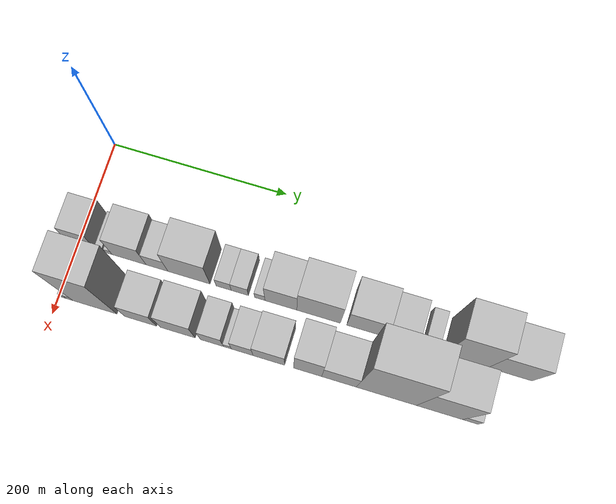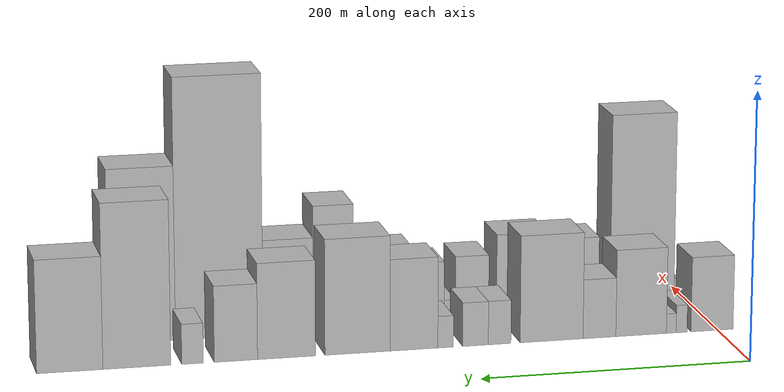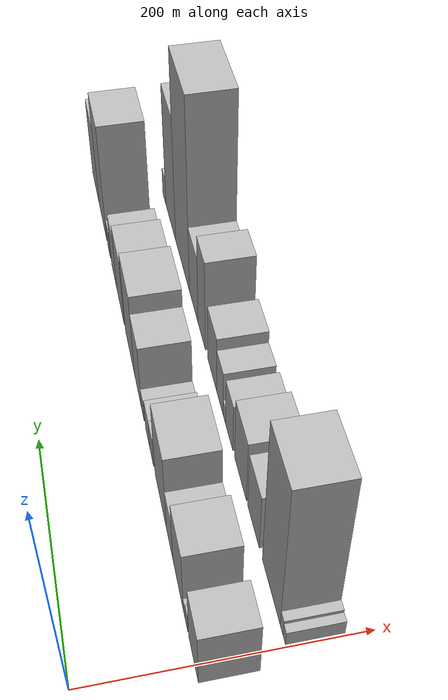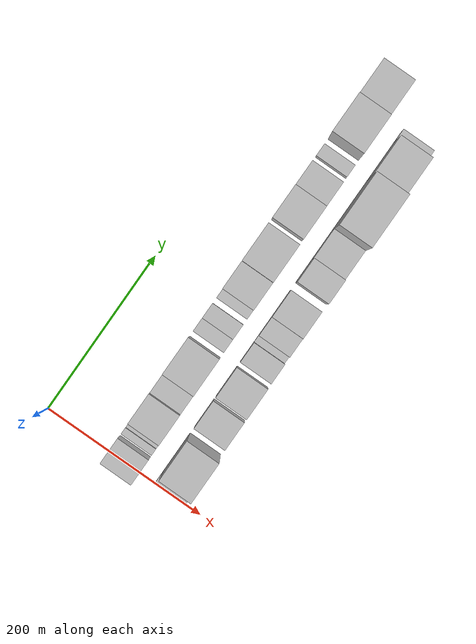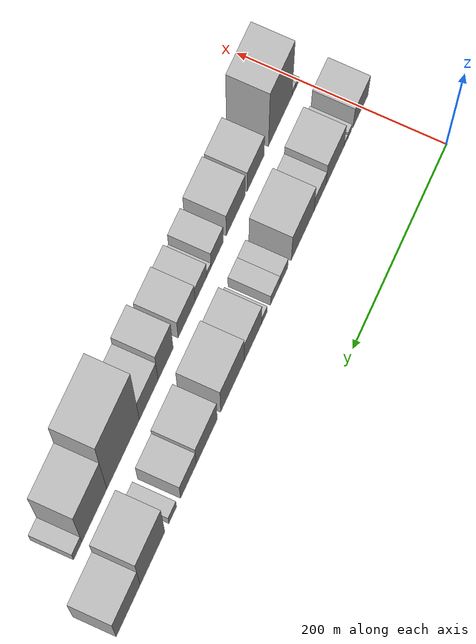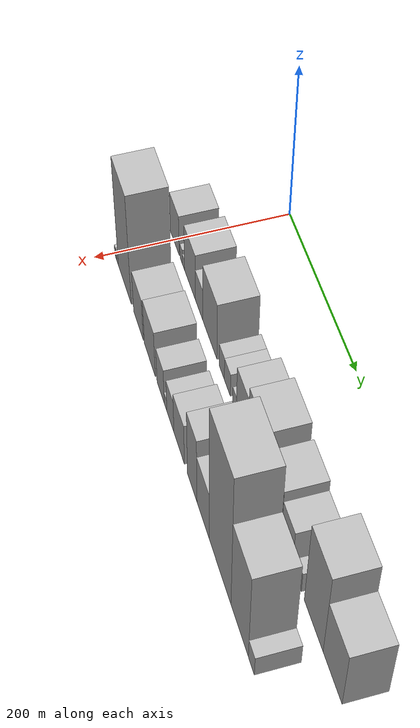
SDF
<sdf version="1.6">
 <world name="default">
  <model name="building_16">
   <static>1</static>
   <pose>100.0000 4.2583 0 0.000000 0.000000 0.000000</pose>
   <link name="link">
    <pose>0 0 28.50 0 0 0</pose>
    <collision name="collision"><geometry><box><size>40.0000 32.5166 57.0000</size></box></geometry></collision>
    <visual name="visual">
     <cast_shadows>0</cast_shadows>
     <geometry><box><size>40.0000 32.5166 57.0000</size></box></geometry>
     <material>
      <script>
       <uri>model://HANNAS_wall/materials/scripts</uri>
       <uri>model://HANNAS_wall/materials/textures</uri>
       <name>vrc/HANNAS_wall</name>
      </script>
     </material>
    </visual>
   </link>
  </model>
  <model name="building_17">
   <static>1</static>
   <pose>100.0000 27.7395 0 0.000000 0.000000 0.000000</pose>
   <link name="link">
    <pose>0 0 10.50 0 0 0</pose>
    <collision name="collision"><geometry><box><size>40.0000 8.4458 21.0000</size></box></geometry></collision>
    <visual name="visual">
     <cast_shadows>0</cast_shadows>
     <geometry><box><size>40.0000 8.4458 21.0000</size></box></geometry>
     <material>
      <script>
       <uri>model://HANNAS_wall/materials/scripts</uri>
       <uri>model://HANNAS_wall/materials/textures</uri>
       <name>vrc/HANNAS_wall</name>
      </script>
     </material>
    </visual>
   </link>
  </model>
  <model name="building_18">
   <static>1</static>
   <pose>100.0000 35.7000 0 0.000000 0.000000 0.000000</pose>
   <link name="link">
    <pose>0 0 7.50 0 0 0</pose>
    <collision name="collision"><geometry><box><size>40.0000 7.4752 15.0000</size></box></geometry></collision>
    <visual name="visual">
     <cast_shadows>0</cast_shadows>
     <geometry><box><size>40.0000 7.4752 15.0000</size></box></geometry>
     <material>
      <script>
       <uri>model://HANNAS_wall/materials/scripts</uri>
       <uri>model://HANNAS_wall/materials/textures</uri>
       <name>vrc/HANNAS_wall</name>
      </script>
     </material>
    </visual>
   </link>
  </model>
  <model name="building_19">
   <static>1</static>
   <pose>100.0000 58.8195 0 0.000000 0.000000 0.000000</pose>
   <link name="link">
    <pose>0 0 33.00 0 0 0</pose>
    <collision name="collision"><geometry><box><size>40.0000 38.7638 66.0000</size></box></geometry></collision>
    <visual name="visual">
     <cast_shadows>0</cast_shadows>
     <geometry><box><size>40.0000 38.7638 66.0000</size></box></geometry>
     <material>
      <script>
       <uri>model://HANNAS_wall/materials/scripts</uri>
       <uri>model://HANNAS_wall/materials/textures</uri>
       <name>vrc/HANNAS_wall</name>
      </script>
     </material>
    </visual>
   </link>
  </model>
  <model name="building_20">
   <static>1</static>
   <pose>100.0000 90.7243 0 0.000000 0.000000 0.000000</pose>
   <link name="link">
    <pose>0 0 22.50 0 0 0</pose>
    <collision name="collision"><geometry><box><size>40.0000 25.0458 45.0000</size></box></geometry></collision>
    <visual name="visual">
     <cast_shadows>0</cast_shadows>
     <geometry><box><size>40.0000 25.0458 45.0000</size></box></geometry>
     <material>
      <script>
       <uri>model://HANNAS_wall/materials/scripts</uri>
       <uri>model://HANNAS_wall/materials/textures</uri>
       <name>vrc/HANNAS_wall</name>
      </script>
     </material>
    </visual>
   </link>
  </model>
  <model name="building_21">
   <static>1</static>
   <pose>100.0000 127.0861 0 0.000000 0.000000 0.000000</pose>
   <link name="link">
    <pose>0 0 40.50 0 0 0</pose>
    <collision name="collision"><geometry><box><size>40.0000 47.6779 81.0000</size></box></geometry></collision>
    <visual name="visual">
     <cast_shadows>0</cast_shadows>
     <geometry><box><size>40.0000 47.6779 81.0000</size></box></geometry>
     <material>
      <script>
       <uri>model://HANNAS_wall/materials/scripts</uri>
       <uri>model://HANNAS_wall/materials/textures</uri>
       <name>vrc/HANNAS_wall</name>
      </script>
     </material>
    </visual>
   </link>
  </model>
  <model name="building_22">
   <static>1</static>
   <pose>100.0000 166.4520 0 0.000000 0.000000 0.000000</pose>
   <link name="link">
    <pose>0 0 16.50 0 0 0</pose>
    <collision name="collision"><geometry><box><size>40.0000 17.0539 33.0000</size></box></geometry></collision>
    <visual name="visual">
     <cast_shadows>0</cast_shadows>
     <geometry><box><size>40.0000 17.0539 33.0000</size></box></geometry>
     <material>
      <script>
       <uri>model://HANNAS_wall/materials/scripts</uri>
       <uri>model://HANNAS_wall/materials/textures</uri>
       <name>vrc/HANNAS_wall</name>
      </script>
     </material>
    </visual>
   </link>
  </model>
  <model name="building_23">
   <static>1</static>
   <pose>100.0000 184.6069 0 0.000000 0.000000 0.000000</pose>
   <link name="link">
    <pose>0 0 16.50 0 0 0</pose>
    <collision name="collision"><geometry><box><size>40.0000 19.2559 33.0000</size></box></geometry></collision>
    <visual name="visual">
     <cast_shadows>0</cast_shadows>
     <geometry><box><size>40.0000 19.2559 33.0000</size></box></geometry>
     <material>
      <script>
       <uri>model://HANNAS_wall/materials/scripts</uri>
       <uri>model://HANNAS_wall/materials/textures</uri>
       <name>vrc/HANNAS_wall</name>
      </script>
     </material>
    </visual>
   </link>
  </model>
  <model name="building_24">
   <static>1</static>
   <pose>100.0000 207.0537 0 0.000000 0.000000 0.000000</pose>
   <link name="link">
    <pose>0 0 12.00 0 0 0</pose>
    <collision name="collision"><geometry><box><size>40.0000 11.6377 24.0000</size></box></geometry></collision>
    <visual name="visual">
     <cast_shadows>0</cast_shadows>
     <geometry><box><size>40.0000 11.6377 24.0000</size></box></geometry>
     <material>
      <script>
       <uri>model://HANNAS_wall/materials/scripts</uri>
       <uri>model://HANNAS_wall/materials/textures</uri>
       <name>vrc/HANNAS_wall</name>
      </script>
     </material>
    </visual>
   </link>
  </model>
  <model name="building_25">
   <static>1</static>
   <pose>100.0000 230.6576 0 0.000000 0.000000 0.000000</pose>
   <link name="link">
    <pose>0 0 34.50 0 0 0</pose>
    <collision name="collision"><geometry><box><size>40.0000 35.5702 69.0000</size></box></geometry></collision>
    <visual name="visual">
     <cast_shadows>0</cast_shadows>
     <geometry><box><size>40.0000 35.5702 69.0000</size></box></geometry>
     <material>
      <script>
       <uri>model://HANNAS_wall/materials/scripts</uri>
       <uri>model://HANNAS_wall/materials/textures</uri>
       <name>vrc/HANNAS_wall</name>
      </script>
     </material>
    </visual>
   </link>
  </model>
  <model name="building_26">
   <static>1</static>
   <pose>100.0000 272.6482 0 0.000000 0.000000 0.000000</pose>
   <link name="link">
    <pose>0 0 43.50 0 0 0</pose>
    <collision name="collision"><geometry><box><size>40.0000 48.4110 87.0000</size></box></geometry></collision>
    <visual name="visual">
     <cast_shadows>0</cast_shadows>
     <geometry><box><size>40.0000 48.4110 87.0000</size></box></geometry>
     <material>
      <script>
       <uri>model://HANNAS_wall/materials/scripts</uri>
       <uri>model://HANNAS_wall/materials/textures</uri>
       <name>vrc/HANNAS_wall</name>
      </script>
     </material>
    </visual>
   </link>
  </model>
  <model name="building_27">
   <static>1</static>
   <pose>100.0000 325.1792 0 0.000000 0.000000 0.000000</pose>
   <link name="link">
    <pose>0 0 36.00 0 0 0</pose>
    <collision name="collision"><geometry><box><size>40.0000 42.6510 72.0000</size></box></geometry></collision>
    <visual name="visual">
     <cast_shadows>0</cast_shadows>
     <geometry><box><size>40.0000 42.6510 72.0000</size></box></geometry>
     <material>
      <script>
       <uri>model://HANNAS_wall/materials/scripts</uri>
       <uri>model://HANNAS_wall/materials/textures</uri>
       <name>vrc/HANNAS_wall</name>
      </script>
     </material>
    </visual>
   </link>
  </model>
  <model name="building_28">
   <static>1</static>
   <pose>100.0000 362.3307 0 0.000000 0.000000 0.000000</pose>
   <link name="link">
    <pose>0 0 28.50 0 0 0</pose>
    <collision name="collision"><geometry><box><size>40.0000 31.6519 57.0000</size></box></geometry></collision>
    <visual name="visual">
     <cast_shadows>0</cast_shadows>
     <geometry><box><size>40.0000 31.6519 57.0000</size></box></geometry>
     <material>
      <script>
       <uri>model://HANNAS_wall/materials/scripts</uri>
       <uri>model://HANNAS_wall/materials/textures</uri>
       <name>vrc/HANNAS_wall</name>
      </script>
     </material>
    </visual>
   </link>
  </model>
  <model name="building_29">
   <static>1</static>
   <pose>100.0000 393.9861 0 0.000000 0.000000 0.000000</pose>
   <link name="link">
    <pose>0 0 15.00 0 0 0</pose>
    <collision name="collision"><geometry><box><size>40.0000 15.6589 30.0000</size></box></geometry></collision>
    <visual name="visual">
     <cast_shadows>0</cast_shadows>
     <geometry><box><size>40.0000 15.6589 30.0000</size></box></geometry>
     <material>
      <script>
       <uri>model://HANNAS_wall/materials/scripts</uri>
       <uri>model://HANNAS_wall/materials/textures</uri>
       <name>vrc/HANNAS_wall</name>
      </script>
     </material>
    </visual>
   </link>
  </model>
  <model name="building_30">
   <static>1</static>
   <pose>100.0000 434.3695 0 0.000000 0.000000 0.000000</pose>
   <link name="link">
    <pose>0 0 61.50 0 0 0</pose>
    <collision name="collision"><geometry><box><size>40.0000 49.1080 123.0000</size></box></geometry></collision>
    <visual name="visual">
     <cast_shadows>0</cast_shadows>
     <geometry><box><size>40.0000 49.1080 123.0000</size></box></geometry>
     <material>
      <script>
       <uri>model://HANNAS_wall/materials/scripts</uri>
       <uri>model://HANNAS_wall/materials/textures</uri>
       <name>vrc/HANNAS_wall</name>
      </script>
     </material>
    </visual>
   </link>
  </model>
  <model name="building_31">
   <static>1</static>
   <pose>100.0000 482.7435 0 0.000000 0.000000 0.000000</pose>
   <link name="link">
    <pose>0 0 42.00 0 0 0</pose>
    <collision name="collision"><geometry><box><size>40.0000 47.6400 84.0000</size></box></geometry></collision>
    <visual name="visual">
     <cast_shadows>0</cast_shadows>
     <geometry><box><size>40.0000 47.6400 84.0000</size></box></geometry>
     <material>
      <script>
       <uri>model://HANNAS_wall/materials/scripts</uri>
       <uri>model://HANNAS_wall/materials/textures</uri>
       <name>vrc/HANNAS_wall</name>
      </script>
     </material>
    </visual>
   </link>
  </model>
  <model name="building_45">
   <static>1</static>
   <pose>160.0000 5.2234 0 0.000000 0.000000 0.000000</pose>
   <link name="link">
    <pose>0 0 7.50 0 0 0</pose>
    <collision name="collision"><geometry><box><size>40.0000 6.7153 15.0000</size></box></geometry></collision>
    <visual name="visual">
     <cast_shadows>0</cast_shadows>
     <geometry><box><size>40.0000 6.7153 15.0000</size></box></geometry>
     <material>
      <script>
       <uri>model://HANNAS_wall/materials/scripts</uri>
       <uri>model://HANNAS_wall/materials/textures</uri>
       <name>vrc/HANNAS_wall</name>
      </script>
     </material>
    </visual>
   </link>
  </model>
  <model name="building_46">
   <static>1</static>
   <pose>160.0000 12.3222 0 0.000000 0.000000 0.000000</pose>
   <link name="link">
    <pose>0 0 9.00 0 0 0</pose>
    <collision name="collision"><geometry><box><size>40.0000 7.4822 18.0000</size></box></geometry></collision>
    <visual name="visual">
     <cast_shadows>0</cast_shadows>
     <geometry><box><size>40.0000 7.4822 18.0000</size></box></geometry>
     <material>
      <script>
       <uri>model://HANNAS_wall/materials/scripts</uri>
       <uri>model://HANNAS_wall/materials/textures</uri>
       <name>vrc/HANNAS_wall</name>
      </script>
     </material>
    </visual>
   </link>
  </model>
  <model name="building_47">
   <static>1</static>
   <pose>160.0000 41.0272 0 0.000000 0.000000 0.000000</pose>
   <link name="link">
    <pose>0 0 76.50 0 0 0</pose>
    <collision name="collision"><geometry><box><size>40.0000 49.9279 153.0000</size></box></geometry></collision>
    <visual name="visual">
     <cast_shadows>0</cast_shadows>
     <geometry><box><size>40.0000 49.9279 153.0000</size></box></geometry>
     <material>
      <script>
       <uri>model://HANNAS_wall/materials/scripts</uri>
       <uri>model://HANNAS_wall/materials/textures</uri>
       <name>vrc/HANNAS_wall</name>
      </script>
     </material>
    </visual>
   </link>
  </model>
  <model name="building_48">
   <static>1</static>
   <pose>160.0000 92.8804 0 0.000000 0.000000 0.000000</pose>
   <link name="link">
    <pose>0 0 30.00 0 0 0</pose>
    <collision name="collision"><geometry><box><size>40.0000 35.7784 60.0000</size></box></geometry></collision>
    <visual name="visual">
     <cast_shadows>0</cast_shadows>
     <geometry><box><size>40.0000 35.7784 60.0000</size></box></geometry>
     <material>
      <script>
       <uri>model://HANNAS_wall/materials/scripts</uri>
       <uri>model://HANNAS_wall/materials/textures</uri>
       <name>vrc/HANNAS_wall</name>
      </script>
     </material>
    </visual>
   </link>
  </model>
  <model name="building_49">
   <static>1</static>
   <pose>160.0000 134.3964 0 0.000000 0.000000 0.000000</pose>
   <link name="link">
    <pose>0 0 33.00 0 0 0</pose>
    <collision name="collision"><geometry><box><size>40.0000 39.2535 66.0000</size></box></geometry></collision>
    <visual name="visual">
     <cast_shadows>0</cast_shadows>
     <geometry><box><size>40.0000 39.2535 66.0000</size></box></geometry>
     <material>
      <script>
       <uri>model://HANNAS_wall/materials/scripts</uri>
       <uri>model://HANNAS_wall/materials/textures</uri>
       <name>vrc/HANNAS_wall</name>
      </script>
     </material>
    </visual>
   </link>
  </model>
  <model name="building_50">
   <static>1</static>
   <pose>160.0000 172.7979 0 0.000000 0.000000 0.000000</pose>
   <link name="link">
    <pose>0 0 25.50 0 0 0</pose>
    <collision name="collision"><geometry><box><size>40.0000 25.5496 51.0000</size></box></geometry></collision>
    <visual name="visual">
     <cast_shadows>0</cast_shadows>
     <geometry><box><size>40.0000 25.5496 51.0000</size></box></geometry>
     <material>
      <script>
       <uri>model://HANNAS_wall/materials/scripts</uri>
       <uri>model://HANNAS_wall/materials/textures</uri>
       <name>vrc/HANNAS_wall</name>
      </script>
     </material>
    </visual>
   </link>
  </model>
  <model name="building_51">
   <static>1</static>
   <pose>160.0000 189.9495 0 0.000000 0.000000 0.000000</pose>
   <link name="link">
    <pose>0 0 9.00 0 0 0</pose>
    <collision name="collision"><geometry><box><size>40.0000 8.7536 18.0000</size></box></geometry></collision>
    <visual name="visual">
     <cast_shadows>0</cast_shadows>
     <geometry><box><size>40.0000 8.7536 18.0000</size></box></geometry>
     <material>
      <script>
       <uri>model://HANNAS_wall/materials/scripts</uri>
       <uri>model://HANNAS_wall/materials/textures</uri>
       <name>vrc/HANNAS_wall</name>
      </script>
     </material>
    </visual>
   </link>
  </model>
  <model name="building_52">
   <static>1</static>
   <pose>160.0000 206.3289 0 0.000000 0.000000 0.000000</pose>
   <link name="link">
    <pose>0 0 24.00 0 0 0</pose>
    <collision name="collision"><geometry><box><size>40.0000 24.0052 48.0000</size></box></geometry></collision>
    <visual name="visual">
     <cast_shadows>0</cast_shadows>
     <geometry><box><size>40.0000 24.0052 48.0000</size></box></geometry>
     <material>
      <script>
       <uri>model://HANNAS_wall/materials/scripts</uri>
       <uri>model://HANNAS_wall/materials/textures</uri>
       <name>vrc/HANNAS_wall</name>
      </script>
     </material>
    </visual>
   </link>
  </model>
  <model name="building_53">
   <static>1</static>
   <pose>160.0000 235.7483 0 0.000000 0.000000 0.000000</pose>
   <link name="link">
    <pose>0 0 30.00 0 0 0</pose>
    <collision name="collision"><geometry><box><size>40.0000 34.8336 60.0000</size></box></geometry></collision>
    <visual name="visual">
     <cast_shadows>0</cast_shadows>
     <geometry><box><size>40.0000 34.8336 60.0000</size></box></geometry>
     <material>
      <script>
       <uri>model://HANNAS_wall/materials/scripts</uri>
       <uri>model://HANNAS_wall/materials/textures</uri>
       <name>vrc/HANNAS_wall</name>
      </script>
     </material>
    </visual>
   </link>
  </model>
  <model name="building_54">
   <static>1</static>
   <pose>160.0000 278.4550 0 0.000000 0.000000 0.000000</pose>
   <link name="link">
    <pose>0 0 48.00 0 0 0</pose>
    <collision name="collision"><geometry><box><size>40.0000 30.5797 96.0000</size></box></geometry></collision>
    <visual name="visual">
     <cast_shadows>0</cast_shadows>
     <geometry><box><size>40.0000 30.5797 96.0000</size></box></geometry>
     <material>
      <script>
       <uri>model://HANNAS_wall/materials/scripts</uri>
       <uri>model://HANNAS_wall/materials/textures</uri>
       <name>vrc/HANNAS_wall</name>
      </script>
     </material>
    </visual>
   </link>
  </model>
  <model name="building_55">
   <static>1</static>
   <pose>160.0000 312.6941 0 0.000000 0.000000 0.000000</pose>
   <link name="link">
    <pose>0 0 36.00 0 0 0</pose>
    <collision name="collision"><geometry><box><size>40.0000 37.8986 72.0000</size></box></geometry></collision>
    <visual name="visual">
     <cast_shadows>0</cast_shadows>
     <geometry><box><size>40.0000 37.8986 72.0000</size></box></geometry>
     <material>
      <script>
       <uri>model://HANNAS_wall/materials/scripts</uri>
       <uri>model://HANNAS_wall/materials/textures</uri>
       <name>vrc/HANNAS_wall</name>
      </script>
     </material>
    </visual>
   </link>
  </model>
  <model name="building_56">
   <static>1</static>
   <pose>160.0000 364.2523 0 0.000000 0.000000 0.000000</pose>
   <link name="link">
    <pose>0 0 99.00 0 0 0</pose>
    <collision name="collision"><geometry><box><size>40.0000 65.2178 198.0000</size></box></geometry></collision>
    <visual name="visual">
     <cast_shadows>0</cast_shadows>
     <geometry><box><size>40.0000 65.2178 198.0000</size></box></geometry>
     <material>
      <script>
       <uri>model://HANNAS_wall/materials/scripts</uri>
       <uri>model://HANNAS_wall/materials/textures</uri>
       <name>vrc/HANNAS_wall</name>
      </script>
     </material>
    </visual>
   </link>
  </model>
  <model name="building_57">
   <static>1</static>
   <pose>160.0000 421.6298 0 0.000000 0.000000 0.000000</pose>
   <link name="link">
    <pose>0 0 66.00 0 0 0</pose>
    <collision name="collision"><geometry><box><size>40.0000 49.5372 132.0000</size></box></geometry></collision>
    <visual name="visual">
     <cast_shadows>0</cast_shadows>
     <geometry><box><size>40.0000 49.5372 132.0000</size></box></geometry>
     <material>
      <script>
       <uri>model://HANNAS_wall/materials/scripts</uri>
       <uri>model://HANNAS_wall/materials/textures</uri>
       <name>vrc/HANNAS_wall</name>
      </script>
     </material>
    </visual>
   </link>
  </model>
  <model name="building_58">
   <static>1</static>
   <pose>160.0000 454.6637 0 0.000000 0.000000 0.000000</pose>
   <link name="link">
    <pose>0 0 15.00 0 0 0</pose>
    <collision name="collision"><geometry><box><size>40.0000 16.5307 30.0000</size></box></geometry></collision>
    <visual name="visual">
     <cast_shadows>0</cast_shadows>
     <geometry><box><size>40.0000 16.5307 30.0000</size></box></geometry>
     <material>
      <script>
       <uri>model://HANNAS_wall/materials/scripts</uri>
       <uri>model://HANNAS_wall/materials/textures</uri>
       <name>vrc/HANNAS_wall</name>
      </script>
     </material>
    </visual>
   </link>
  </model>
 </world>
</sdf>
